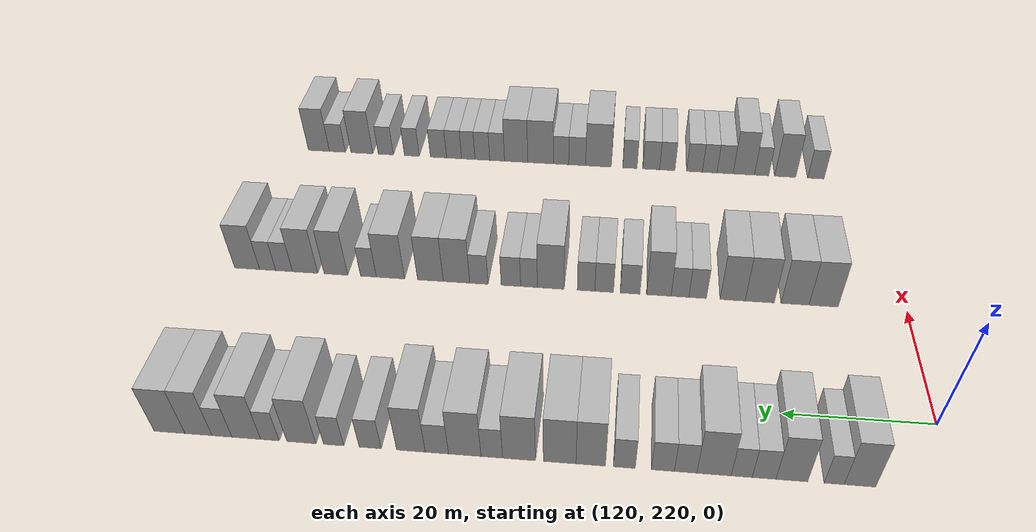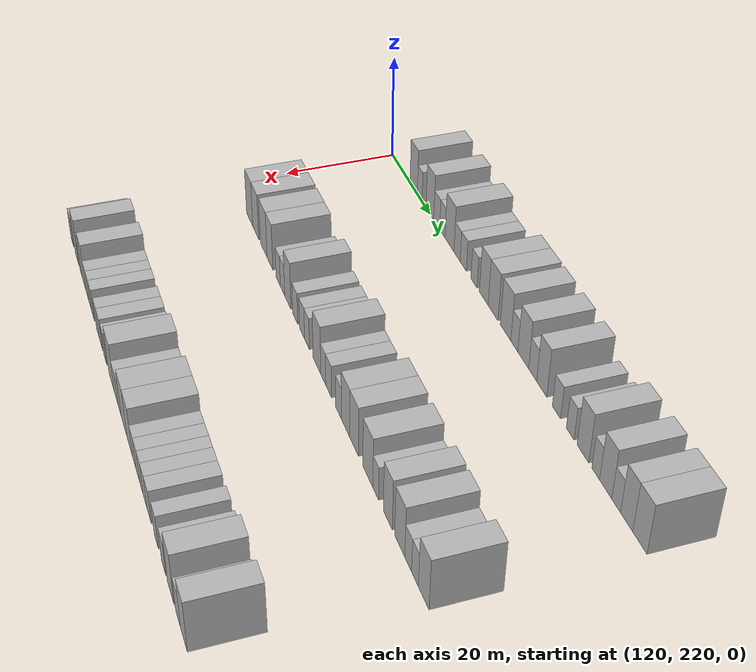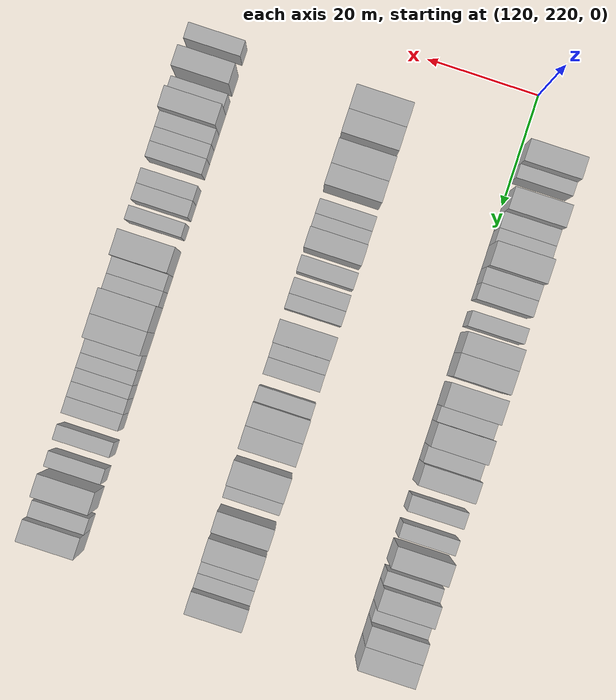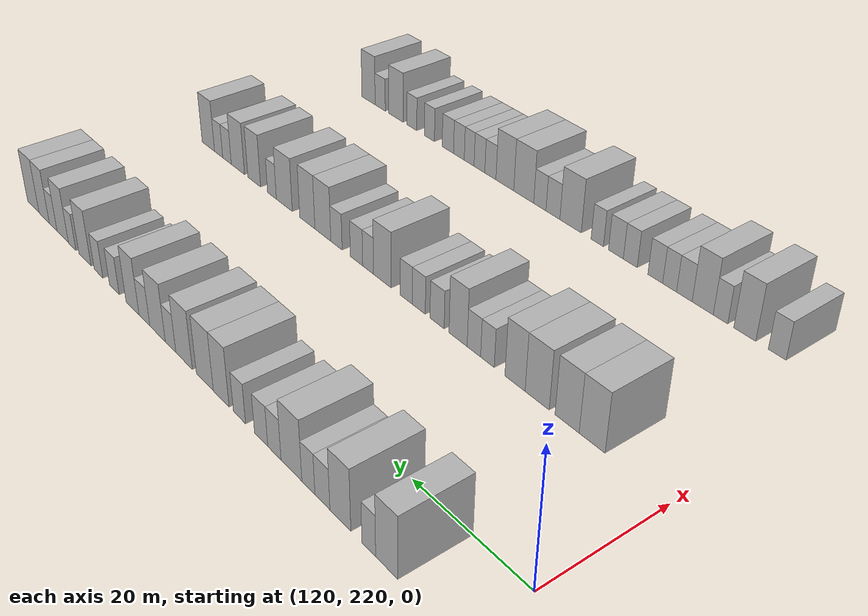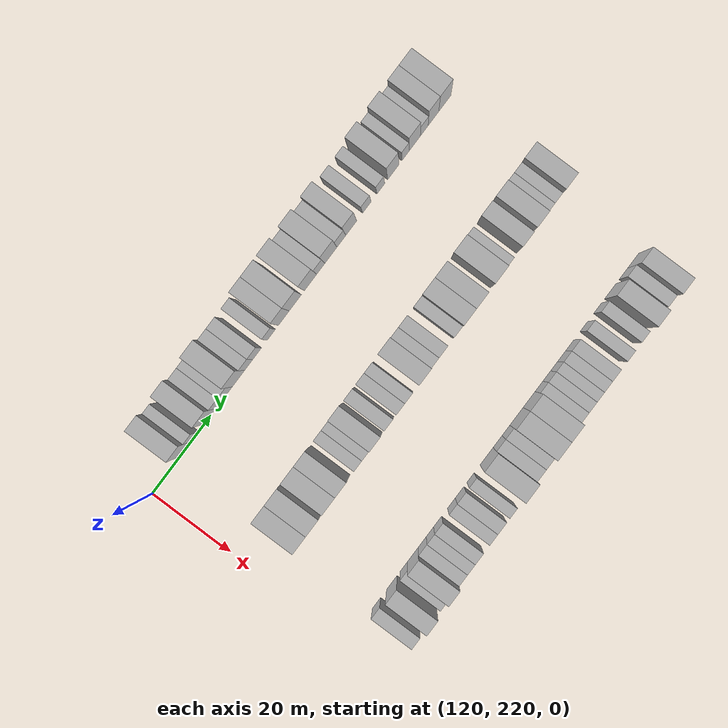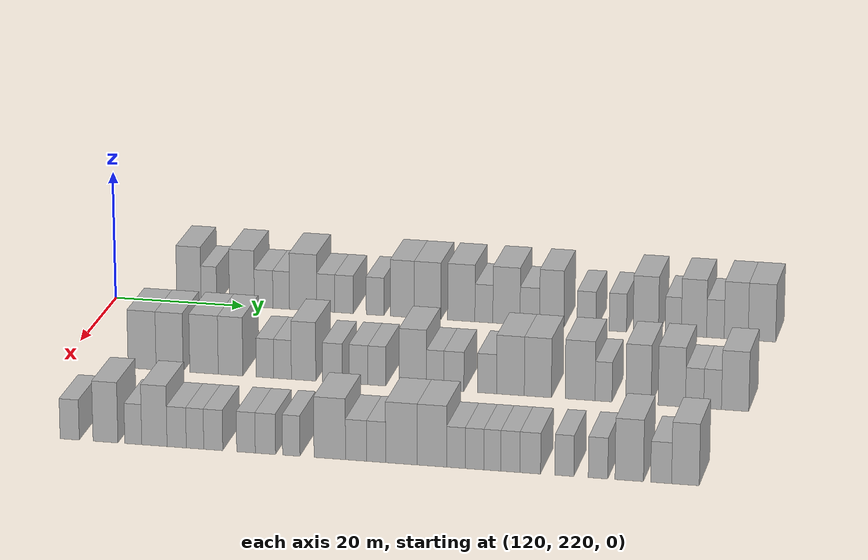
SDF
<sdf version="1.6">
 <world name="default">
  <model name="building_855">
   <static>1</static>
   <pose>115.0000 231.4894 0 0.000000 0.000000 0.000000</pose>
   <link name="link">
    <pose>0 0 4.50 0 0 0</pose>
    <collision name="collision"><geometry><box><size>10.0000 3.8216 9.0000</size></box></geometry></collision>
    <visual name="visual">
     <cast_shadows>0</cast_shadows>
     <geometry><box><size>10.0000 3.8216 9.0000</size></box></geometry>
     <material>
      <script>
       <uri>model://HANNAS_wall/materials/scripts</uri>
       <uri>model://HANNAS_wall/materials/textures</uri>
       <name>vrc/HANNAS_wall</name>
      </script>
     </material>
    </visual>
   </link>
  </model>
  <model name="building_856">
   <static>1</static>
   <pose>115.0000 234.6204 0 0.000000 0.000000 0.000000</pose>
   <link name="link">
    <pose>0 0 3.00 0 0 0</pose>
    <collision name="collision"><geometry><box><size>10.0000 2.4404 6.0000</size></box></geometry></collision>
    <visual name="visual">
     <cast_shadows>0</cast_shadows>
     <geometry><box><size>10.0000 2.4404 6.0000</size></box></geometry>
     <material>
      <script>
       <uri>model://HANNAS_wall/materials/scripts</uri>
       <uri>model://HANNAS_wall/materials/textures</uri>
       <name>vrc/HANNAS_wall</name>
      </script>
     </material>
    </visual>
   </link>
  </model>
  <model name="building_857">
   <static>1</static>
   <pose>115.0000 239.7906 0 0.000000 0.000000 0.000000</pose>
   <link name="link">
    <pose>0 0 4.50 0 0 0</pose>
    <collision name="collision"><geometry><box><size>10.0000 3.9001 9.0000</size></box></geometry></collision>
    <visual name="visual">
     <cast_shadows>0</cast_shadows>
     <geometry><box><size>10.0000 3.9001 9.0000</size></box></geometry>
     <material>
      <script>
       <uri>model://HANNAS_wall/materials/scripts</uri>
       <uri>model://HANNAS_wall/materials/textures</uri>
       <name>vrc/HANNAS_wall</name>
      </script>
     </material>
    </visual>
   </link>
  </model>
  <model name="building_858">
   <static>1</static>
   <pose>115.0000 243.1891 0 0.000000 0.000000 0.000000</pose>
   <link name="link">
    <pose>0 0 3.00 0 0 0</pose>
    <collision name="collision"><geometry><box><size>10.0000 2.8970 6.0000</size></box></geometry></collision>
    <visual name="visual">
     <cast_shadows>0</cast_shadows>
     <geometry><box><size>10.0000 2.8970 6.0000</size></box></geometry>
     <material>
      <script>
       <uri>model://HANNAS_wall/materials/scripts</uri>
       <uri>model://HANNAS_wall/materials/textures</uri>
       <name>vrc/HANNAS_wall</name>
      </script>
     </material>
    </visual>
   </link>
  </model>
  <model name="building_859">
   <static>1</static>
   <pose>115.0000 245.9275 0 0.000000 0.000000 0.000000</pose>
   <link name="link">
    <pose>0 0 3.00 0 0 0</pose>
    <collision name="collision"><geometry><box><size>10.0000 2.5798 6.0000</size></box></geometry></collision>
    <visual name="visual">
     <cast_shadows>0</cast_shadows>
     <geometry><box><size>10.0000 2.5798 6.0000</size></box></geometry>
     <material>
      <script>
       <uri>model://HANNAS_wall/materials/scripts</uri>
       <uri>model://HANNAS_wall/materials/textures</uri>
       <name>vrc/HANNAS_wall</name>
      </script>
     </material>
    </visual>
   </link>
  </model>
  <model name="building_860">
   <static>1</static>
   <pose>115.0000 249.3425 0 0.000000 0.000000 0.000000</pose>
   <link name="link">
    <pose>0 0 4.50 0 0 0</pose>
    <collision name="collision"><geometry><box><size>10.0000 4.2502 9.0000</size></box></geometry></collision>
    <visual name="visual">
     <cast_shadows>0</cast_shadows>
     <geometry><box><size>10.0000 4.2502 9.0000</size></box></geometry>
     <material>
      <script>
       <uri>model://HANNAS_wall/materials/scripts</uri>
       <uri>model://HANNAS_wall/materials/textures</uri>
       <name>vrc/HANNAS_wall</name>
      </script>
     </material>
    </visual>
   </link>
  </model>
  <model name="building_861">
   <static>1</static>
   <pose>115.0000 252.8662 0 0.000000 0.000000 0.000000</pose>
   <link name="link">
    <pose>0 0 3.00 0 0 0</pose>
    <collision name="collision"><geometry><box><size>10.0000 2.7972 6.0000</size></box></geometry></collision>
    <visual name="visual">
     <cast_shadows>0</cast_shadows>
     <geometry><box><size>10.0000 2.7972 6.0000</size></box></geometry>
     <material>
      <script>
       <uri>model://HANNAS_wall/materials/scripts</uri>
       <uri>model://HANNAS_wall/materials/textures</uri>
       <name>vrc/HANNAS_wall</name>
      </script>
     </material>
    </visual>
   </link>
  </model>
  <model name="building_862">
   <static>1</static>
   <pose>115.0000 255.7025 0 0.000000 0.000000 0.000000</pose>
   <link name="link">
    <pose>0 0 3.00 0 0 0</pose>
    <collision name="collision"><geometry><box><size>10.0000 2.8754 6.0000</size></box></geometry></collision>
    <visual name="visual">
     <cast_shadows>0</cast_shadows>
     <geometry><box><size>10.0000 2.8754 6.0000</size></box></geometry>
     <material>
      <script>
       <uri>model://HANNAS_wall/materials/scripts</uri>
       <uri>model://HANNAS_wall/materials/textures</uri>
       <name>vrc/HANNAS_wall</name>
      </script>
     </material>
    </visual>
   </link>
  </model>
  <model name="building_863">
   <static>1</static>
   <pose>115.0000 260.5072 0 0.000000 0.000000 0.000000</pose>
   <link name="link">
    <pose>0 0 3.00 0 0 0</pose>
    <collision name="collision"><geometry><box><size>10.0000 2.7341 6.0000</size></box></geometry></collision>
    <visual name="visual">
     <cast_shadows>0</cast_shadows>
     <geometry><box><size>10.0000 2.7341 6.0000</size></box></geometry>
     <material>
      <script>
       <uri>model://HANNAS_wall/materials/scripts</uri>
       <uri>model://HANNAS_wall/materials/textures</uri>
       <name>vrc/HANNAS_wall</name>
      </script>
     </material>
    </visual>
   </link>
  </model>
  <model name="building_864">
   <static>1</static>
   <pose>115.0000 264.7261 0 0.000000 0.000000 0.000000</pose>
   <link name="link">
    <pose>0 0 4.50 0 0 0</pose>
    <collision name="collision"><geometry><box><size>10.0000 3.7037 9.0000</size></box></geometry></collision>
    <visual name="visual">
     <cast_shadows>0</cast_shadows>
     <geometry><box><size>10.0000 3.7037 9.0000</size></box></geometry>
     <material>
      <script>
       <uri>model://HANNAS_wall/materials/scripts</uri>
       <uri>model://HANNAS_wall/materials/textures</uri>
       <name>vrc/HANNAS_wall</name>
      </script>
     </material>
    </visual>
   </link>
  </model>
  <model name="building_865">
   <static>1</static>
   <pose>115.0000 268.6369 0 0.000000 0.000000 0.000000</pose>
   <link name="link">
    <pose>0 0 4.50 0 0 0</pose>
    <collision name="collision"><geometry><box><size>10.0000 4.1177 9.0000</size></box></geometry></collision>
    <visual name="visual">
     <cast_shadows>0</cast_shadows>
     <geometry><box><size>10.0000 4.1177 9.0000</size></box></geometry>
     <material>
      <script>
       <uri>model://HANNAS_wall/materials/scripts</uri>
       <uri>model://HANNAS_wall/materials/textures</uri>
       <name>vrc/HANNAS_wall</name>
      </script>
     </material>
    </visual>
   </link>
  </model>
  <model name="building_866">
   <static>1</static>
   <pose>115.0000 273.7920 0 0.000000 0.000000 0.000000</pose>
   <link name="link">
    <pose>0 0 4.50 0 0 0</pose>
    <collision name="collision"><geometry><box><size>10.0000 4.1926 9.0000</size></box></geometry></collision>
    <visual name="visual">
     <cast_shadows>0</cast_shadows>
     <geometry><box><size>10.0000 4.1926 9.0000</size></box></geometry>
     <material>
      <script>
       <uri>model://HANNAS_wall/materials/scripts</uri>
       <uri>model://HANNAS_wall/materials/textures</uri>
       <name>vrc/HANNAS_wall</name>
      </script>
     </material>
    </visual>
   </link>
  </model>
  <model name="building_867">
   <static>1</static>
   <pose>115.0000 277.2657 0 0.000000 0.000000 0.000000</pose>
   <link name="link">
    <pose>0 0 3.00 0 0 0</pose>
    <collision name="collision"><geometry><box><size>10.0000 2.7546 6.0000</size></box></geometry></collision>
    <visual name="visual">
     <cast_shadows>0</cast_shadows>
     <geometry><box><size>10.0000 2.7546 6.0000</size></box></geometry>
     <material>
      <script>
       <uri>model://HANNAS_wall/materials/scripts</uri>
       <uri>model://HANNAS_wall/materials/textures</uri>
       <name>vrc/HANNAS_wall</name>
      </script>
     </material>
    </visual>
   </link>
  </model>
  <model name="building_868">
   <static>1</static>
   <pose>115.0000 280.7253 0 0.000000 0.000000 0.000000</pose>
   <link name="link">
    <pose>0 0 4.50 0 0 0</pose>
    <collision name="collision"><geometry><box><size>10.0000 4.1647 9.0000</size></box></geometry></collision>
    <visual name="visual">
     <cast_shadows>0</cast_shadows>
     <geometry><box><size>10.0000 4.1647 9.0000</size></box></geometry>
     <material>
      <script>
       <uri>model://HANNAS_wall/materials/scripts</uri>
       <uri>model://HANNAS_wall/materials/textures</uri>
       <name>vrc/HANNAS_wall</name>
      </script>
     </material>
    </visual>
   </link>
  </model>
  <model name="building_869">
   <static>1</static>
   <pose>115.0000 284.3032 0 0.000000 0.000000 0.000000</pose>
   <link name="link">
    <pose>0 0 3.00 0 0 0</pose>
    <collision name="collision"><geometry><box><size>10.0000 2.9910 6.0000</size></box></geometry></collision>
    <visual name="visual">
     <cast_shadows>0</cast_shadows>
     <geometry><box><size>10.0000 2.9910 6.0000</size></box></geometry>
     <material>
      <script>
       <uri>model://HANNAS_wall/materials/scripts</uri>
       <uri>model://HANNAS_wall/materials/textures</uri>
       <name>vrc/HANNAS_wall</name>
      </script>
     </material>
    </visual>
   </link>
  </model>
  <model name="building_870">
   <static>1</static>
   <pose>115.0000 287.6470 0 0.000000 0.000000 0.000000</pose>
   <link name="link">
    <pose>0 0 4.50 0 0 0</pose>
    <collision name="collision"><geometry><box><size>10.0000 3.6966 9.0000</size></box></geometry></collision>
    <visual name="visual">
     <cast_shadows>0</cast_shadows>
     <geometry><box><size>10.0000 3.6966 9.0000</size></box></geometry>
     <material>
      <script>
       <uri>model://HANNAS_wall/materials/scripts</uri>
       <uri>model://HANNAS_wall/materials/textures</uri>
       <name>vrc/HANNAS_wall</name>
      </script>
     </material>
    </visual>
   </link>
  </model>
  <model name="building_871">
   <static>1</static>
   <pose>115.0000 292.9279 0 0.000000 0.000000 0.000000</pose>
   <link name="link">
    <pose>0 0 3.00 0 0 0</pose>
    <collision name="collision"><geometry><box><size>10.0000 2.8652 6.0000</size></box></geometry></collision>
    <visual name="visual">
     <cast_shadows>0</cast_shadows>
     <geometry><box><size>10.0000 2.8652 6.0000</size></box></geometry>
     <material>
      <script>
       <uri>model://HANNAS_wall/materials/scripts</uri>
       <uri>model://HANNAS_wall/materials/textures</uri>
       <name>vrc/HANNAS_wall</name>
      </script>
     </material>
    </visual>
   </link>
  </model>
  <model name="building_872">
   <static>1</static>
   <pose>115.0000 297.6815 0 0.000000 0.000000 0.000000</pose>
   <link name="link">
    <pose>0 0 3.00 0 0 0</pose>
    <collision name="collision"><geometry><box><size>10.0000 2.6420 6.0000</size></box></geometry></collision>
    <visual name="visual">
     <cast_shadows>0</cast_shadows>
     <geometry><box><size>10.0000 2.6420 6.0000</size></box></geometry>
     <material>
      <script>
       <uri>model://HANNAS_wall/materials/scripts</uri>
       <uri>model://HANNAS_wall/materials/textures</uri>
       <name>vrc/HANNAS_wall</name>
      </script>
     </material>
    </visual>
   </link>
  </model>
  <model name="building_873">
   <static>1</static>
   <pose>115.0000 301.9175 0 0.000000 0.000000 0.000000</pose>
   <link name="link">
    <pose>0 0 4.50 0 0 0</pose>
    <collision name="collision"><geometry><box><size>10.0000 3.8299 9.0000</size></box></geometry></collision>
    <visual name="visual">
     <cast_shadows>0</cast_shadows>
     <geometry><box><size>10.0000 3.8299 9.0000</size></box></geometry>
     <material>
      <script>
       <uri>model://HANNAS_wall/materials/scripts</uri>
       <uri>model://HANNAS_wall/materials/textures</uri>
       <name>vrc/HANNAS_wall</name>
      </script>
     </material>
    </visual>
   </link>
  </model>
  <model name="building_874">
   <static>1</static>
   <pose>115.0000 306.0561 0 0.000000 0.000000 0.000000</pose>
   <link name="link">
    <pose>0 0 3.00 0 0 0</pose>
    <collision name="collision"><geometry><box><size>10.0000 2.4473 6.0000</size></box></geometry></collision>
    <visual name="visual">
     <cast_shadows>0</cast_shadows>
     <geometry><box><size>10.0000 2.4473 6.0000</size></box></geometry>
     <material>
      <script>
       <uri>model://HANNAS_wall/materials/scripts</uri>
       <uri>model://HANNAS_wall/materials/textures</uri>
       <name>vrc/HANNAS_wall</name>
      </script>
     </material>
    </visual>
   </link>
  </model>
  <model name="building_875">
   <static>1</static>
   <pose>115.0000 309.1820 0 0.000000 0.000000 0.000000</pose>
   <link name="link">
    <pose>0 0 4.50 0 0 0</pose>
    <collision name="collision"><geometry><box><size>10.0000 3.8045 9.0000</size></box></geometry></collision>
    <visual name="visual">
     <cast_shadows>0</cast_shadows>
     <geometry><box><size>10.0000 3.8045 9.0000</size></box></geometry>
     <material>
      <script>
       <uri>model://HANNAS_wall/materials/scripts</uri>
       <uri>model://HANNAS_wall/materials/textures</uri>
       <name>vrc/HANNAS_wall</name>
      </script>
     </material>
    </visual>
   </link>
  </model>
  <model name="building_876">
   <static>1</static>
   <pose>115.0000 312.4072 0 0.000000 0.000000 0.000000</pose>
   <link name="link">
    <pose>0 0 3.00 0 0 0</pose>
    <collision name="collision"><geometry><box><size>10.0000 2.6457 6.0000</size></box></geometry></collision>
    <visual name="visual">
     <cast_shadows>0</cast_shadows>
     <geometry><box><size>10.0000 2.6457 6.0000</size></box></geometry>
     <material>
      <script>
       <uri>model://HANNAS_wall/materials/scripts</uri>
       <uri>model://HANNAS_wall/materials/textures</uri>
       <name>vrc/HANNAS_wall</name>
      </script>
     </material>
    </visual>
   </link>
  </model>
  <model name="building_877">
   <static>1</static>
   <pose>115.0000 315.5341 0 0.000000 0.000000 0.000000</pose>
   <link name="link">
    <pose>0 0 4.50 0 0 0</pose>
    <collision name="collision"><geometry><box><size>10.0000 3.6081 9.0000</size></box></geometry></collision>
    <visual name="visual">
     <cast_shadows>0</cast_shadows>
     <geometry><box><size>10.0000 3.6081 9.0000</size></box></geometry>
     <material>
      <script>
       <uri>model://HANNAS_wall/materials/scripts</uri>
       <uri>model://HANNAS_wall/materials/textures</uri>
       <name>vrc/HANNAS_wall</name>
      </script>
     </material>
    </visual>
   </link>
  </model>
  <model name="building_878">
   <static>1</static>
   <pose>115.0000 319.3964 0 0.000000 0.000000 0.000000</pose>
   <link name="link">
    <pose>0 0 4.50 0 0 0</pose>
    <collision name="collision"><geometry><box><size>10.0000 4.1166 9.0000</size></box></geometry></collision>
    <visual name="visual">
     <cast_shadows>0</cast_shadows>
     <geometry><box><size>10.0000 4.1166 9.0000</size></box></geometry>
     <material>
      <script>
       <uri>model://HANNAS_wall/materials/scripts</uri>
       <uri>model://HANNAS_wall/materials/textures</uri>
       <name>vrc/HANNAS_wall</name>
      </script>
     </material>
    </visual>
   </link>
  </model>
  <model name="building_1092">
   <static>1</static>
   <pose>145.0000 232.0799 0 0.000000 0.000000 0.000000</pose>
   <link name="link">
    <pose>0 0 4.50 0 0 0</pose>
    <collision name="collision"><geometry><box><size>10.0000 4.2321 9.0000</size></box></geometry></collision>
    <visual name="visual">
     <cast_shadows>0</cast_shadows>
     <geometry><box><size>10.0000 4.2321 9.0000</size></box></geometry>
     <material>
      <script>
       <uri>model://HANNAS_wall/materials/scripts</uri>
       <uri>model://HANNAS_wall/materials/textures</uri>
       <name>vrc/HANNAS_wall</name>
      </script>
     </material>
    </visual>
   </link>
  </model>
  <model name="building_1093">
   <static>1</static>
   <pose>145.0000 236.2362 0 0.000000 0.000000 0.000000</pose>
   <link name="link">
    <pose>0 0 4.50 0 0 0</pose>
    <collision name="collision"><geometry><box><size>10.0000 4.0805 9.0000</size></box></geometry></collision>
    <visual name="visual">
     <cast_shadows>0</cast_shadows>
     <geometry><box><size>10.0000 4.0805 9.0000</size></box></geometry>
     <material>
      <script>
       <uri>model://HANNAS_wall/materials/scripts</uri>
       <uri>model://HANNAS_wall/materials/textures</uri>
       <name>vrc/HANNAS_wall</name>
      </script>
     </material>
    </visual>
   </link>
  </model>
  <model name="building_1094">
   <static>1</static>
   <pose>145.0000 241.4177 0 0.000000 0.000000 0.000000</pose>
   <link name="link">
    <pose>0 0 4.50 0 0 0</pose>
    <collision name="collision"><geometry><box><size>10.0000 4.2826 9.0000</size></box></geometry></collision>
    <visual name="visual">
     <cast_shadows>0</cast_shadows>
     <geometry><box><size>10.0000 4.2826 9.0000</size></box></geometry>
     <material>
      <script>
       <uri>model://HANNAS_wall/materials/scripts</uri>
       <uri>model://HANNAS_wall/materials/textures</uri>
       <name>vrc/HANNAS_wall</name>
      </script>
     </material>
    </visual>
   </link>
  </model>
  <model name="building_1095">
   <static>1</static>
   <pose>145.0000 245.4086 0 0.000000 0.000000 0.000000</pose>
   <link name="link">
    <pose>0 0 4.50 0 0 0</pose>
    <collision name="collision"><geometry><box><size>10.0000 3.6992 9.0000</size></box></geometry></collision>
    <visual name="visual">
     <cast_shadows>0</cast_shadows>
     <geometry><box><size>10.0000 3.6992 9.0000</size></box></geometry>
     <material>
      <script>
       <uri>model://HANNAS_wall/materials/scripts</uri>
       <uri>model://HANNAS_wall/materials/textures</uri>
       <name>vrc/HANNAS_wall</name>
      </script>
     </material>
    </visual>
   </link>
  </model>
  <model name="building_1096">
   <static>1</static>
   <pose>145.0000 250.5622 0 0.000000 0.000000 0.000000</pose>
   <link name="link">
    <pose>0 0 3.00 0 0 0</pose>
    <collision name="collision"><geometry><box><size>10.0000 2.6079 6.0000</size></box></geometry></collision>
    <visual name="visual">
     <cast_shadows>0</cast_shadows>
     <geometry><box><size>10.0000 2.6079 6.0000</size></box></geometry>
     <material>
      <script>
       <uri>model://HANNAS_wall/materials/scripts</uri>
       <uri>model://HANNAS_wall/materials/textures</uri>
       <name>vrc/HANNAS_wall</name>
      </script>
     </material>
    </visual>
   </link>
  </model>
  <model name="building_1097">
   <static>1</static>
   <pose>145.0000 253.1867 0 0.000000 0.000000 0.000000</pose>
   <link name="link">
    <pose>0 0 3.00 0 0 0</pose>
    <collision name="collision"><geometry><box><size>10.0000 2.6410 6.0000</size></box></geometry></collision>
    <visual name="visual">
     <cast_shadows>0</cast_shadows>
     <geometry><box><size>10.0000 2.6410 6.0000</size></box></geometry>
     <material>
      <script>
       <uri>model://HANNAS_wall/materials/scripts</uri>
       <uri>model://HANNAS_wall/materials/textures</uri>
       <name>vrc/HANNAS_wall</name>
      </script>
     </material>
    </visual>
   </link>
  </model>
  <model name="building_1098">
   <static>1</static>
   <pose>145.0000 256.3306 0 0.000000 0.000000 0.000000</pose>
   <link name="link">
    <pose>0 0 4.50 0 0 0</pose>
    <collision name="collision"><geometry><box><size>10.0000 3.6469 9.0000</size></box></geometry></collision>
    <visual name="visual">
     <cast_shadows>0</cast_shadows>
     <geometry><box><size>10.0000 3.6469 9.0000</size></box></geometry>
     <material>
      <script>
       <uri>model://HANNAS_wall/materials/scripts</uri>
       <uri>model://HANNAS_wall/materials/textures</uri>
       <name>vrc/HANNAS_wall</name>
      </script>
     </material>
    </visual>
   </link>
  </model>
  <model name="building_1099">
   <static>1</static>
   <pose>145.0000 260.6245 0 0.000000 0.000000 0.000000</pose>
   <link name="link">
    <pose>0 0 3.00 0 0 0</pose>
    <collision name="collision"><geometry><box><size>10.0000 2.9409 6.0000</size></box></geometry></collision>
    <visual name="visual">
     <cast_shadows>0</cast_shadows>
     <geometry><box><size>10.0000 2.9409 6.0000</size></box></geometry>
     <material>
      <script>
       <uri>model://HANNAS_wall/materials/scripts</uri>
       <uri>model://HANNAS_wall/materials/textures</uri>
       <name>vrc/HANNAS_wall</name>
      </script>
     </material>
    </visual>
   </link>
  </model>
  <model name="building_1100">
   <static>1</static>
   <pose>145.0000 264.5008 0 0.000000 0.000000 0.000000</pose>
   <link name="link">
    <pose>0 0 3.00 0 0 0</pose>
    <collision name="collision"><geometry><box><size>10.0000 2.8117 6.0000</size></box></geometry></collision>
    <visual name="visual">
     <cast_shadows>0</cast_shadows>
     <geometry><box><size>10.0000 2.8117 6.0000</size></box></geometry>
     <material>
      <script>
       <uri>model://HANNAS_wall/materials/scripts</uri>
       <uri>model://HANNAS_wall/materials/textures</uri>
       <name>vrc/HANNAS_wall</name>
      </script>
     </material>
    </visual>
   </link>
  </model>
  <model name="building_1101">
   <static>1</static>
   <pose>145.0000 267.2248 0 0.000000 0.000000 0.000000</pose>
   <link name="link">
    <pose>0 0 3.00 0 0 0</pose>
    <collision name="collision"><geometry><box><size>10.0000 2.6364 6.0000</size></box></geometry></collision>
    <visual name="visual">
     <cast_shadows>0</cast_shadows>
     <geometry><box><size>10.0000 2.6364 6.0000</size></box></geometry>
     <material>
      <script>
       <uri>model://HANNAS_wall/materials/scripts</uri>
       <uri>model://HANNAS_wall/materials/textures</uri>
       <name>vrc/HANNAS_wall</name>
      </script>
     </material>
    </visual>
   </link>
  </model>
  <model name="building_1102">
   <static>1</static>
   <pose>145.0000 272.5589 0 0.000000 0.000000 0.000000</pose>
   <link name="link">
    <pose>0 0 4.50 0 0 0</pose>
    <collision name="collision"><geometry><box><size>10.0000 4.0320 9.0000</size></box></geometry></collision>
    <visual name="visual">
     <cast_shadows>0</cast_shadows>
     <geometry><box><size>10.0000 4.0320 9.0000</size></box></geometry>
     <material>
      <script>
       <uri>model://HANNAS_wall/materials/scripts</uri>
       <uri>model://HANNAS_wall/materials/textures</uri>
       <name>vrc/HANNAS_wall</name>
      </script>
     </material>
    </visual>
   </link>
  </model>
  <model name="building_1103">
   <static>1</static>
   <pose>145.0000 275.8497 0 0.000000 0.000000 0.000000</pose>
   <link name="link">
    <pose>0 0 3.00 0 0 0</pose>
    <collision name="collision"><geometry><box><size>10.0000 2.5495 6.0000</size></box></geometry></collision>
    <visual name="visual">
     <cast_shadows>0</cast_shadows>
     <geometry><box><size>10.0000 2.5495 6.0000</size></box></geometry>
     <material>
      <script>
       <uri>model://HANNAS_wall/materials/scripts</uri>
       <uri>model://HANNAS_wall/materials/textures</uri>
       <name>vrc/HANNAS_wall</name>
      </script>
     </material>
    </visual>
   </link>
  </model>
  <model name="building_1104">
   <static>1</static>
   <pose>145.0000 278.6001 0 0.000000 0.000000 0.000000</pose>
   <link name="link">
    <pose>0 0 3.00 0 0 0</pose>
    <collision name="collision"><geometry><box><size>10.0000 2.9513 6.0000</size></box></geometry></collision>
    <visual name="visual">
     <cast_shadows>0</cast_shadows>
     <geometry><box><size>10.0000 2.9513 6.0000</size></box></geometry>
     <material>
      <script>
       <uri>model://HANNAS_wall/materials/scripts</uri>
       <uri>model://HANNAS_wall/materials/textures</uri>
       <name>vrc/HANNAS_wall</name>
      </script>
     </material>
    </visual>
   </link>
  </model>
  <model name="building_1105">
   <static>1</static>
   <pose>145.0000 283.4802 0 0.000000 0.000000 0.000000</pose>
   <link name="link">
    <pose>0 0 3.00 0 0 0</pose>
    <collision name="collision"><geometry><box><size>10.0000 2.8088 6.0000</size></box></geometry></collision>
    <visual name="visual">
     <cast_shadows>0</cast_shadows>
     <geometry><box><size>10.0000 2.8088 6.0000</size></box></geometry>
     <material>
      <script>
       <uri>model://HANNAS_wall/materials/scripts</uri>
       <uri>model://HANNAS_wall/materials/textures</uri>
       <name>vrc/HANNAS_wall</name>
      </script>
     </material>
    </visual>
   </link>
  </model>
  <model name="building_1106">
   <static>1</static>
   <pose>145.0000 286.9160 0 0.000000 0.000000 0.000000</pose>
   <link name="link">
    <pose>0 0 4.50 0 0 0</pose>
    <collision name="collision"><geometry><box><size>10.0000 4.0628 9.0000</size></box></geometry></collision>
    <visual name="visual">
     <cast_shadows>0</cast_shadows>
     <geometry><box><size>10.0000 4.0628 9.0000</size></box></geometry>
     <material>
      <script>
       <uri>model://HANNAS_wall/materials/scripts</uri>
       <uri>model://HANNAS_wall/materials/textures</uri>
       <name>vrc/HANNAS_wall</name>
      </script>
     </material>
    </visual>
   </link>
  </model>
  <model name="building_1107">
   <static>1</static>
   <pose>145.0000 290.9298 0 0.000000 0.000000 0.000000</pose>
   <link name="link">
    <pose>0 0 4.50 0 0 0</pose>
    <collision name="collision"><geometry><box><size>10.0000 3.9649 9.0000</size></box></geometry></collision>
    <visual name="visual">
     <cast_shadows>0</cast_shadows>
     <geometry><box><size>10.0000 3.9649 9.0000</size></box></geometry>
     <material>
      <script>
       <uri>model://HANNAS_wall/materials/scripts</uri>
       <uri>model://HANNAS_wall/materials/textures</uri>
       <name>vrc/HANNAS_wall</name>
      </script>
     </material>
    </visual>
   </link>
  </model>
  <model name="building_1108">
   <static>1</static>
   <pose>145.0000 297.0977 0 0.000000 0.000000 0.000000</pose>
   <link name="link">
    <pose>0 0 4.50 0 0 0</pose>
    <collision name="collision"><geometry><box><size>10.0000 4.3708 9.0000</size></box></geometry></collision>
    <visual name="visual">
     <cast_shadows>0</cast_shadows>
     <geometry><box><size>10.0000 4.3708 9.0000</size></box></geometry>
     <material>
      <script>
       <uri>model://HANNAS_wall/materials/scripts</uri>
       <uri>model://HANNAS_wall/materials/textures</uri>
       <name>vrc/HANNAS_wall</name>
      </script>
     </material>
    </visual>
   </link>
  </model>
  <model name="building_1109">
   <static>1</static>
   <pose>145.0000 300.5133 0 0.000000 0.000000 0.000000</pose>
   <link name="link">
    <pose>0 0 3.00 0 0 0</pose>
    <collision name="collision"><geometry><box><size>10.0000 2.4604 6.0000</size></box></geometry></collision>
    <visual name="visual">
     <cast_shadows>0</cast_shadows>
     <geometry><box><size>10.0000 2.4604 6.0000</size></box></geometry>
     <material>
      <script>
       <uri>model://HANNAS_wall/materials/scripts</uri>
       <uri>model://HANNAS_wall/materials/textures</uri>
       <name>vrc/HANNAS_wall</name>
      </script>
     </material>
    </visual>
   </link>
  </model>
  <model name="building_1110">
   <static>1</static>
   <pose>145.0000 305.5840 0 0.000000 0.000000 0.000000</pose>
   <link name="link">
    <pose>0 0 4.50 0 0 0</pose>
    <collision name="collision"><geometry><box><size>10.0000 3.6809 9.0000</size></box></geometry></collision>
    <visual name="visual">
     <cast_shadows>0</cast_shadows>
     <geometry><box><size>10.0000 3.6809 9.0000</size></box></geometry>
     <material>
      <script>
       <uri>model://HANNAS_wall/materials/scripts</uri>
       <uri>model://HANNAS_wall/materials/textures</uri>
       <name>vrc/HANNAS_wall</name>
      </script>
     </material>
    </visual>
   </link>
  </model>
  <model name="building_1111">
   <static>1</static>
   <pose>145.0000 310.4065 0 0.000000 0.000000 0.000000</pose>
   <link name="link">
    <pose>0 0 4.50 0 0 0</pose>
    <collision name="collision"><geometry><box><size>10.0000 3.9642 9.0000</size></box></geometry></collision>
    <visual name="visual">
     <cast_shadows>0</cast_shadows>
     <geometry><box><size>10.0000 3.9642 9.0000</size></box></geometry>
     <material>
      <script>
       <uri>model://HANNAS_wall/materials/scripts</uri>
       <uri>model://HANNAS_wall/materials/textures</uri>
       <name>vrc/HANNAS_wall</name>
      </script>
     </material>
    </visual>
   </link>
  </model>
  <model name="building_1112">
   <static>1</static>
   <pose>145.0000 313.7058 0 0.000000 0.000000 0.000000</pose>
   <link name="link">
    <pose>0 0 3.00 0 0 0</pose>
    <collision name="collision"><geometry><box><size>10.0000 2.6343 6.0000</size></box></geometry></collision>
    <visual name="visual">
     <cast_shadows>0</cast_shadows>
     <geometry><box><size>10.0000 2.6343 6.0000</size></box></geometry>
     <material>
      <script>
       <uri>model://HANNAS_wall/materials/scripts</uri>
       <uri>model://HANNAS_wall/materials/textures</uri>
       <name>vrc/HANNAS_wall</name>
      </script>
     </material>
    </visual>
   </link>
  </model>
  <model name="building_1113">
   <static>1</static>
   <pose>145.0000 316.2976 0 0.000000 0.000000 0.000000</pose>
   <link name="link">
    <pose>0 0 3.00 0 0 0</pose>
    <collision name="collision"><geometry><box><size>10.0000 2.5493 6.0000</size></box></geometry></collision>
    <visual name="visual">
     <cast_shadows>0</cast_shadows>
     <geometry><box><size>10.0000 2.5493 6.0000</size></box></geometry>
     <material>
      <script>
       <uri>model://HANNAS_wall/materials/scripts</uri>
       <uri>model://HANNAS_wall/materials/textures</uri>
       <name>vrc/HANNAS_wall</name>
      </script>
     </material>
    </visual>
   </link>
  </model>
  <model name="building_1114">
   <static>1</static>
   <pose>145.0000 319.5373 0 0.000000 0.000000 0.000000</pose>
   <link name="link">
    <pose>0 0 4.50 0 0 0</pose>
    <collision name="collision"><geometry><box><size>10.0000 3.9300 9.0000</size></box></geometry></collision>
    <visual name="visual">
     <cast_shadows>0</cast_shadows>
     <geometry><box><size>10.0000 3.9300 9.0000</size></box></geometry>
     <material>
      <script>
       <uri>model://HANNAS_wall/materials/scripts</uri>
       <uri>model://HANNAS_wall/materials/textures</uri>
       <name>vrc/HANNAS_wall</name>
      </script>
     </material>
    </visual>
   </link>
  </model>
  <model name="building_1311">
   <static>1</static>
   <pose>175.0000 229.5528 0 0.000000 0.000000 0.000000</pose>
   <link name="link">
    <pose>0 0 3.00 0 0 0</pose>
    <collision name="collision"><geometry><box><size>10.0000 2.7922 6.0000</size></box></geometry></collision>
    <visual name="visual">
     <cast_shadows>0</cast_shadows>
     <geometry><box><size>10.0000 2.7922 6.0000</size></box></geometry>
     <material>
      <script>
       <uri>model://HANNAS_wall/materials/scripts</uri>
       <uri>model://HANNAS_wall/materials/textures</uri>
       <name>vrc/HANNAS_wall</name>
      </script>
     </material>
    </visual>
   </link>
  </model>
  <model name="building_1312">
   <static>1</static>
   <pose>175.0000 234.7520 0 0.000000 0.000000 0.000000</pose>
   <link name="link">
    <pose>0 0 4.50 0 0 0</pose>
    <collision name="collision"><geometry><box><size>10.0000 3.6061 9.0000</size></box></geometry></collision>
    <visual name="visual">
     <cast_shadows>0</cast_shadows>
     <geometry><box><size>10.0000 3.6061 9.0000</size></box></geometry>
     <material>
      <script>
       <uri>model://HANNAS_wall/materials/scripts</uri>
       <uri>model://HANNAS_wall/materials/textures</uri>
       <name>vrc/HANNAS_wall</name>
      </script>
     </material>
    </visual>
   </link>
  </model>
  <model name="building_1313">
   <static>1</static>
   <pose>175.0000 238.7805 0 0.000000 0.000000 0.000000</pose>
   <link name="link">
    <pose>0 0 3.00 0 0 0</pose>
    <collision name="collision"><geometry><box><size>10.0000 2.4509 6.0000</size></box></geometry></collision>
    <visual name="visual">
     <cast_shadows>0</cast_shadows>
     <geometry><box><size>10.0000 2.4509 6.0000</size></box></geometry>
     <material>
      <script>
       <uri>model://HANNAS_wall/materials/scripts</uri>
       <uri>model://HANNAS_wall/materials/textures</uri>
       <name>vrc/HANNAS_wall</name>
      </script>
     </material>
    </visual>
   </link>
  </model>
  <model name="building_1314">
   <static>1</static>
   <pose>175.0000 241.8312 0 0.000000 0.000000 0.000000</pose>
   <link name="link">
    <pose>0 0 4.50 0 0 0</pose>
    <collision name="collision"><geometry><box><size>10.0000 3.6506 9.0000</size></box></geometry></collision>
    <visual name="visual">
     <cast_shadows>0</cast_shadows>
     <geometry><box><size>10.0000 3.6506 9.0000</size></box></geometry>
     <material>
      <script>
       <uri>model://HANNAS_wall/materials/scripts</uri>
       <uri>model://HANNAS_wall/materials/textures</uri>
       <name>vrc/HANNAS_wall</name>
      </script>
     </material>
    </visual>
   </link>
  </model>
  <model name="building_1315">
   <static>1</static>
   <pose>175.0000 245.0429 0 0.000000 0.000000 0.000000</pose>
   <link name="link">
    <pose>0 0 3.00 0 0 0</pose>
    <collision name="collision"><geometry><box><size>10.0000 2.7727 6.0000</size></box></geometry></collision>
    <visual name="visual">
     <cast_shadows>0</cast_shadows>
     <geometry><box><size>10.0000 2.7727 6.0000</size></box></geometry>
     <material>
      <script>
       <uri>model://HANNAS_wall/materials/scripts</uri>
       <uri>model://HANNAS_wall/materials/textures</uri>
       <name>vrc/HANNAS_wall</name>
      </script>
     </material>
    </visual>
   </link>
  </model>
  <model name="building_1316">
   <static>1</static>
   <pose>175.0000 247.6869 0 0.000000 0.000000 0.000000</pose>
   <link name="link">
    <pose>0 0 3.00 0 0 0</pose>
    <collision name="collision"><geometry><box><size>10.0000 2.5152 6.0000</size></box></geometry></collision>
    <visual name="visual">
     <cast_shadows>0</cast_shadows>
     <geometry><box><size>10.0000 2.5152 6.0000</size></box></geometry>
     <material>
      <script>
       <uri>model://HANNAS_wall/materials/scripts</uri>
       <uri>model://HANNAS_wall/materials/textures</uri>
       <name>vrc/HANNAS_wall</name>
      </script>
     </material>
    </visual>
   </link>
  </model>
  <model name="building_1317">
   <static>1</static>
   <pose>175.0000 250.3109 0 0.000000 0.000000 0.000000</pose>
   <link name="link">
    <pose>0 0 3.00 0 0 0</pose>
    <collision name="collision"><geometry><box><size>10.0000 2.7330 6.0000</size></box></geometry></collision>
    <visual name="visual">
     <cast_shadows>0</cast_shadows>
     <geometry><box><size>10.0000 2.7330 6.0000</size></box></geometry>
     <material>
      <script>
       <uri>model://HANNAS_wall/materials/scripts</uri>
       <uri>model://HANNAS_wall/materials/textures</uri>
       <name>vrc/HANNAS_wall</name>
      </script>
     </material>
    </visual>
   </link>
  </model>
  <model name="building_1318">
   <static>1</static>
   <pose>175.0000 255.0088 0 0.000000 0.000000 0.000000</pose>
   <link name="link">
    <pose>0 0 3.00 0 0 0</pose>
    <collision name="collision"><geometry><box><size>10.0000 2.6628 6.0000</size></box></geometry></collision>
    <visual name="visual">
     <cast_shadows>0</cast_shadows>
     <geometry><box><size>10.0000 2.6628 6.0000</size></box></geometry>
     <material>
      <script>
       <uri>model://HANNAS_wall/materials/scripts</uri>
       <uri>model://HANNAS_wall/materials/textures</uri>
       <name>vrc/HANNAS_wall</name>
      </script>
     </material>
    </visual>
   </link>
  </model>
  <model name="building_1319">
   <static>1</static>
   <pose>175.0000 257.7937 0 0.000000 0.000000 0.000000</pose>
   <link name="link">
    <pose>0 0 3.00 0 0 0</pose>
    <collision name="collision"><geometry><box><size>10.0000 2.9070 6.0000</size></box></geometry></collision>
    <visual name="visual">
     <cast_shadows>0</cast_shadows>
     <geometry><box><size>10.0000 2.9070 6.0000</size></box></geometry>
     <material>
      <script>
       <uri>model://HANNAS_wall/materials/scripts</uri>
       <uri>model://HANNAS_wall/materials/textures</uri>
       <name>vrc/HANNAS_wall</name>
      </script>
     </material>
    </visual>
   </link>
  </model>
  <model name="building_1320">
   <static>1</static>
   <pose>175.0000 261.4900 0 0.000000 0.000000 0.000000</pose>
   <link name="link">
    <pose>0 0 3.00 0 0 0</pose>
    <collision name="collision"><geometry><box><size>10.0000 2.4856 6.0000</size></box></geometry></collision>
    <visual name="visual">
     <cast_shadows>0</cast_shadows>
     <geometry><box><size>10.0000 2.4856 6.0000</size></box></geometry>
     <material>
      <script>
       <uri>model://HANNAS_wall/materials/scripts</uri>
       <uri>model://HANNAS_wall/materials/textures</uri>
       <name>vrc/HANNAS_wall</name>
      </script>
     </material>
    </visual>
   </link>
  </model>
  <model name="building_1321">
   <static>1</static>
   <pose>175.0000 266.9758 0 0.000000 0.000000 0.000000</pose>
   <link name="link">
    <pose>0 0 4.50 0 0 0</pose>
    <collision name="collision"><geometry><box><size>10.0000 4.4861 9.0000</size></box></geometry></collision>
    <visual name="visual">
     <cast_shadows>0</cast_shadows>
     <geometry><box><size>10.0000 4.4861 9.0000</size></box></geometry>
     <material>
      <script>
       <uri>model://HANNAS_wall/materials/scripts</uri>
       <uri>model://HANNAS_wall/materials/textures</uri>
       <name>vrc/HANNAS_wall</name>
      </script>
     </material>
    </visual>
   </link>
  </model>
  <model name="building_1322">
   <static>1</static>
   <pose>175.0000 270.7109 0 0.000000 0.000000 0.000000</pose>
   <link name="link">
    <pose>0 0 3.00 0 0 0</pose>
    <collision name="collision"><geometry><box><size>10.0000 2.9840 6.0000</size></box></geometry></collision>
    <visual name="visual">
     <cast_shadows>0</cast_shadows>
     <geometry><box><size>10.0000 2.9840 6.0000</size></box></geometry>
     <material>
      <script>
       <uri>model://HANNAS_wall/materials/scripts</uri>
       <uri>model://HANNAS_wall/materials/textures</uri>
       <name>vrc/HANNAS_wall</name>
      </script>
     </material>
    </visual>
   </link>
  </model>
  <model name="building_1323">
   <static>1</static>
   <pose>175.0000 273.5519 0 0.000000 0.000000 0.000000</pose>
   <link name="link">
    <pose>0 0 3.00 0 0 0</pose>
    <collision name="collision"><geometry><box><size>10.0000 2.6981 6.0000</size></box></geometry></collision>
    <visual name="visual">
     <cast_shadows>0</cast_shadows>
     <geometry><box><size>10.0000 2.6981 6.0000</size></box></geometry>
     <material>
      <script>
       <uri>model://HANNAS_wall/materials/scripts</uri>
       <uri>model://HANNAS_wall/materials/textures</uri>
       <name>vrc/HANNAS_wall</name>
      </script>
     </material>
    </visual>
   </link>
  </model>
  <model name="building_1324">
   <static>1</static>
   <pose>175.0000 277.1434 0 0.000000 0.000000 0.000000</pose>
   <link name="link">
    <pose>0 0 4.50 0 0 0</pose>
    <collision name="collision"><geometry><box><size>10.0000 4.4850 9.0000</size></box></geometry></collision>
    <visual name="visual">
     <cast_shadows>0</cast_shadows>
     <geometry><box><size>10.0000 4.4850 9.0000</size></box></geometry>
     <material>
      <script>
       <uri>model://HANNAS_wall/materials/scripts</uri>
       <uri>model://HANNAS_wall/materials/textures</uri>
       <name>vrc/HANNAS_wall</name>
      </script>
     </material>
    </visual>
   </link>
  </model>
  <model name="building_1325">
   <static>1</static>
   <pose>175.0000 281.4475 0 0.000000 0.000000 0.000000</pose>
   <link name="link">
    <pose>0 0 4.50 0 0 0</pose>
    <collision name="collision"><geometry><box><size>10.0000 4.1231 9.0000</size></box></geometry></collision>
    <visual name="visual">
     <cast_shadows>0</cast_shadows>
     <geometry><box><size>10.0000 4.1231 9.0000</size></box></geometry>
     <material>
      <script>
       <uri>model://HANNAS_wall/materials/scripts</uri>
       <uri>model://HANNAS_wall/materials/textures</uri>
       <name>vrc/HANNAS_wall</name>
      </script>
     </material>
    </visual>
   </link>
  </model>
  <model name="building_1326">
   <static>1</static>
   <pose>175.0000 284.8261 0 0.000000 0.000000 0.000000</pose>
   <link name="link">
    <pose>0 0 3.00 0 0 0</pose>
    <collision name="collision"><geometry><box><size>10.0000 2.6340 6.0000</size></box></geometry></collision>
    <visual name="visual">
     <cast_shadows>0</cast_shadows>
     <geometry><box><size>10.0000 2.6340 6.0000</size></box></geometry>
     <material>
      <script>
       <uri>model://HANNAS_wall/materials/scripts</uri>
       <uri>model://HANNAS_wall/materials/textures</uri>
       <name>vrc/HANNAS_wall</name>
      </script>
     </material>
    </visual>
   </link>
  </model>
  <model name="building_1327">
   <static>1</static>
   <pose>175.0000 287.4487 0 0.000000 0.000000 0.000000</pose>
   <link name="link">
    <pose>0 0 3.00 0 0 0</pose>
    <collision name="collision"><geometry><box><size>10.0000 2.6112 6.0000</size></box></geometry></collision>
    <visual name="visual">
     <cast_shadows>0</cast_shadows>
     <geometry><box><size>10.0000 2.6112 6.0000</size></box></geometry>
     <material>
      <script>
       <uri>model://HANNAS_wall/materials/scripts</uri>
       <uri>model://HANNAS_wall/materials/textures</uri>
       <name>vrc/HANNAS_wall</name>
      </script>
     </material>
    </visual>
   </link>
  </model>
  <model name="building_1328">
   <static>1</static>
   <pose>175.0000 289.9544 0 0.000000 0.000000 0.000000</pose>
   <link name="link">
    <pose>0 0 3.00 0 0 0</pose>
    <collision name="collision"><geometry><box><size>10.0000 2.4003 6.0000</size></box></geometry></collision>
    <visual name="visual">
     <cast_shadows>0</cast_shadows>
     <geometry><box><size>10.0000 2.4003 6.0000</size></box></geometry>
     <material>
      <script>
       <uri>model://HANNAS_wall/materials/scripts</uri>
       <uri>model://HANNAS_wall/materials/textures</uri>
       <name>vrc/HANNAS_wall</name>
      </script>
     </material>
    </visual>
   </link>
  </model>
  <model name="building_1329">
   <static>1</static>
   <pose>175.0000 292.4894 0 0.000000 0.000000 0.000000</pose>
   <link name="link">
    <pose>0 0 3.00 0 0 0</pose>
    <collision name="collision"><geometry><box><size>10.0000 2.6697 6.0000</size></box></geometry></collision>
    <visual name="visual">
     <cast_shadows>0</cast_shadows>
     <geometry><box><size>10.0000 2.6697 6.0000</size></box></geometry>
     <material>
      <script>
       <uri>model://HANNAS_wall/materials/scripts</uri>
       <uri>model://HANNAS_wall/materials/textures</uri>
       <name>vrc/HANNAS_wall</name>
      </script>
     </material>
    </visual>
   </link>
  </model>
  <model name="building_1330">
   <static>1</static>
   <pose>175.0000 295.2713 0 0.000000 0.000000 0.000000</pose>
   <link name="link">
    <pose>0 0 3.00 0 0 0</pose>
    <collision name="collision"><geometry><box><size>10.0000 2.8940 6.0000</size></box></geometry></collision>
    <visual name="visual">
     <cast_shadows>0</cast_shadows>
     <geometry><box><size>10.0000 2.8940 6.0000</size></box></geometry>
     <material>
      <script>
       <uri>model://HANNAS_wall/materials/scripts</uri>
       <uri>model://HANNAS_wall/materials/textures</uri>
       <name>vrc/HANNAS_wall</name>
      </script>
     </material>
    </visual>
   </link>
  </model>
  <model name="building_1331">
   <static>1</static>
   <pose>175.0000 300.0475 0 0.000000 0.000000 0.000000</pose>
   <link name="link">
    <pose>0 0 3.00 0 0 0</pose>
    <collision name="collision"><geometry><box><size>10.0000 2.6585 6.0000</size></box></geometry></collision>
    <visual name="visual">
     <cast_shadows>0</cast_shadows>
     <geometry><box><size>10.0000 2.6585 6.0000</size></box></geometry>
     <material>
      <script>
       <uri>model://HANNAS_wall/materials/scripts</uri>
       <uri>model://HANNAS_wall/materials/textures</uri>
       <name>vrc/HANNAS_wall</name>
      </script>
     </material>
    </visual>
   </link>
  </model>
  <model name="building_1332">
   <static>1</static>
   <pose>175.0000 304.7360 0 0.000000 0.000000 0.000000</pose>
   <link name="link">
    <pose>0 0 3.00 0 0 0</pose>
    <collision name="collision"><geometry><box><size>10.0000 2.7184 6.0000</size></box></geometry></collision>
    <visual name="visual">
     <cast_shadows>0</cast_shadows>
     <geometry><box><size>10.0000 2.7184 6.0000</size></box></geometry>
     <material>
      <script>
       <uri>model://HANNAS_wall/materials/scripts</uri>
       <uri>model://HANNAS_wall/materials/textures</uri>
       <name>vrc/HANNAS_wall</name>
      </script>
     </material>
    </visual>
   </link>
  </model>
  <model name="building_1333">
   <static>1</static>
   <pose>175.0000 309.0692 0 0.000000 0.000000 0.000000</pose>
   <link name="link">
    <pose>0 0 4.50 0 0 0</pose>
    <collision name="collision"><geometry><box><size>10.0000 3.9481 9.0000</size></box></geometry></collision>
    <visual name="visual">
     <cast_shadows>0</cast_shadows>
     <geometry><box><size>10.0000 3.9481 9.0000</size></box></geometry>
     <material>
      <script>
       <uri>model://HANNAS_wall/materials/scripts</uri>
       <uri>model://HANNAS_wall/materials/textures</uri>
       <name>vrc/HANNAS_wall</name>
      </script>
     </material>
    </visual>
   </link>
  </model>
  <model name="building_1334">
   <static>1</static>
   <pose>175.0000 313.4948 0 0.000000 0.000000 0.000000</pose>
   <link name="link">
    <pose>0 0 3.00 0 0 0</pose>
    <collision name="collision"><geometry><box><size>10.0000 2.9031 6.0000</size></box></geometry></collision>
    <visual name="visual">
     <cast_shadows>0</cast_shadows>
     <geometry><box><size>10.0000 2.9031 6.0000</size></box></geometry>
     <material>
      <script>
       <uri>model://HANNAS_wall/materials/scripts</uri>
       <uri>model://HANNAS_wall/materials/textures</uri>
       <name>vrc/HANNAS_wall</name>
      </script>
     </material>
    </visual>
   </link>
  </model>
  <model name="building_1335">
   <static>1</static>
   <pose>175.0000 316.8560 0 0.000000 0.000000 0.000000</pose>
   <link name="link">
    <pose>0 0 4.50 0 0 0</pose>
    <collision name="collision"><geometry><box><size>10.0000 3.8194 9.0000</size></box></geometry></collision>
    <visual name="visual">
     <cast_shadows>0</cast_shadows>
     <geometry><box><size>10.0000 3.8194 9.0000</size></box></geometry>
     <material>
      <script>
       <uri>model://HANNAS_wall/materials/scripts</uri>
       <uri>model://HANNAS_wall/materials/textures</uri>
       <name>vrc/HANNAS_wall</name>
      </script>
     </material>
    </visual>
   </link>
  </model>
 </world>
</sdf>
